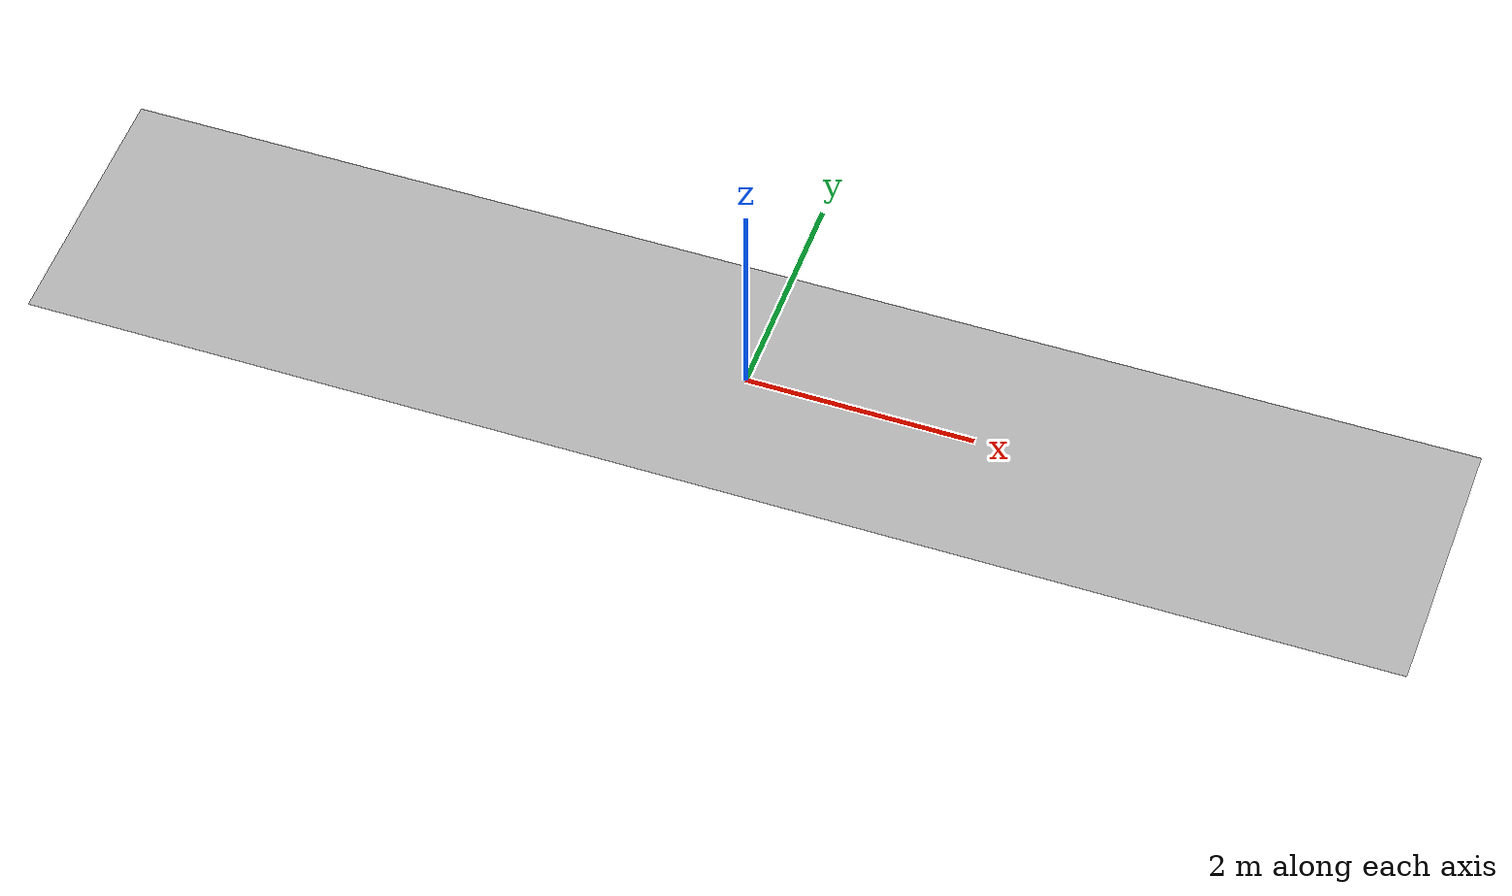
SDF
<?xml version="1.0"?>
<sdf version="1.8">
  <model name="roboclub_banner">
    <static>true</static>
    <link name="link">
      <visual name="banner">
        <geometry><mesh><uri>model://roboclub_banner/meshes/roboclub_banner.obj</uri></mesh></geometry>
      </visual>
    </link>
  </model>
</sdf>
